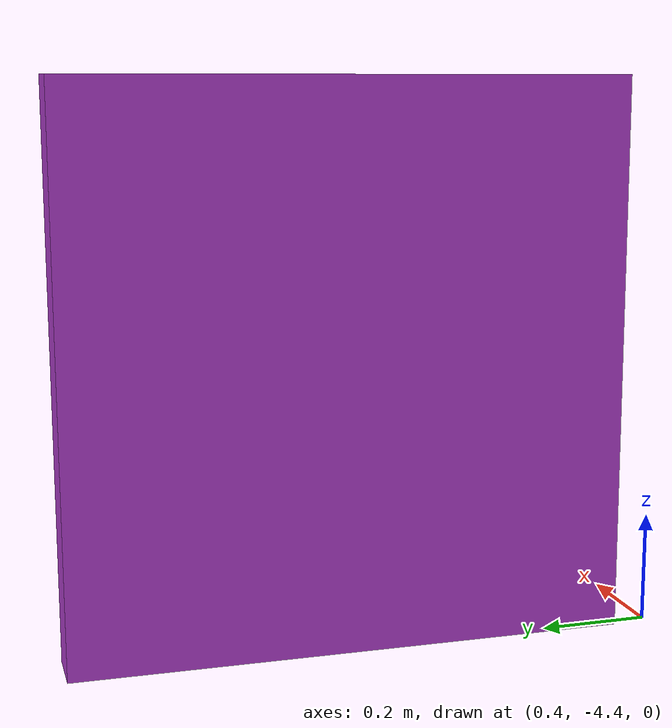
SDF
<?xml version='1.0'?>
<sdf version='1.6'>
  <model name='obstacle9'>
      <pose>0.434793 -3.83522 0.5 0 -0 0</pose>
      <link name='link'>
        <inertial>
          <mass>1</mass>
          <inertia>
            <ixx>0.166667</ixx>
            <ixy>0</ixy>
            <ixz>0</ixz>
            <iyy>0.166667</iyy>
            <iyz>0</iyz>
            <izz>0.166667</izz>
          </inertia>
          <pose>0 0 0 0 -0 0</pose>
        </inertial>
        <collision name='collision'>
          <geometry>
            <box>
              <size>0.1 0.999999 1</size>
            </box>
          </geometry>
          <max_contacts>10</max_contacts>
          <surface>
            <contact>
              <ode/>
            </contact>
            <bounce/>
            <friction>
              <torsional>
                <ode/>
              </torsional>
              <ode/>
            </friction>
          </surface>
        </collision>
        <visual name='visual'>
          <geometry>
            <box>
              <size>0.1 0.999999 1</size>
            </box>
          </geometry>
          <material>
            <script>
              <name>Gazebo/Purple</name>
              <uri>file://media/materials/scripts/gazebo.material</uri>
            </script>
          </material>
        </visual>
        <self_collide>0</self_collide>
        <enable_wind>0</enable_wind>
        <kinematic>0</kinematic>
      </link>
    </model>
</sdf>
